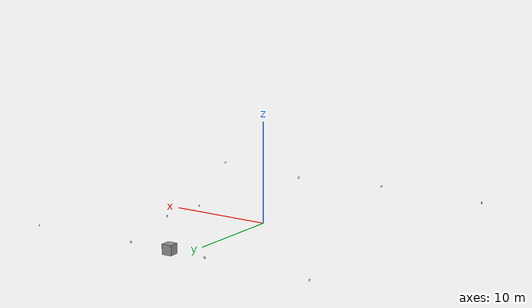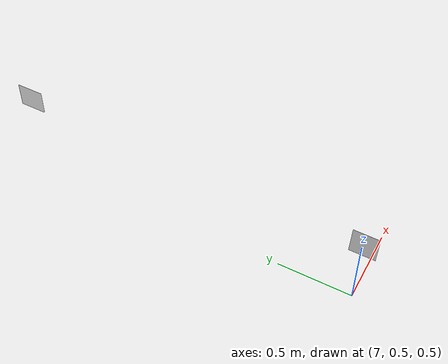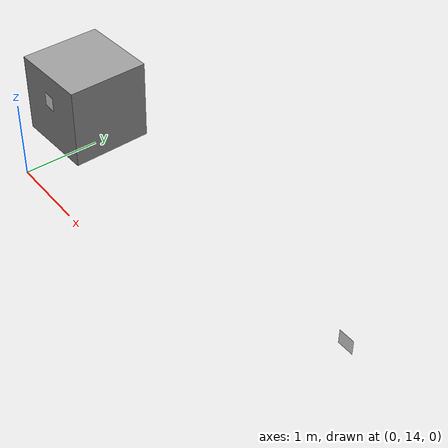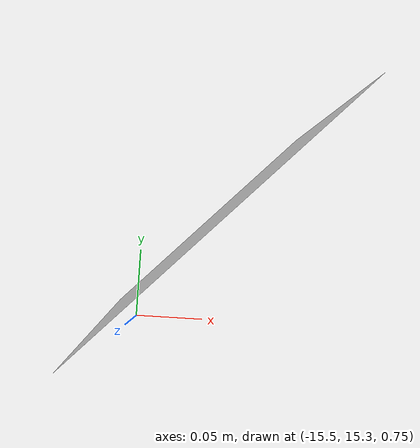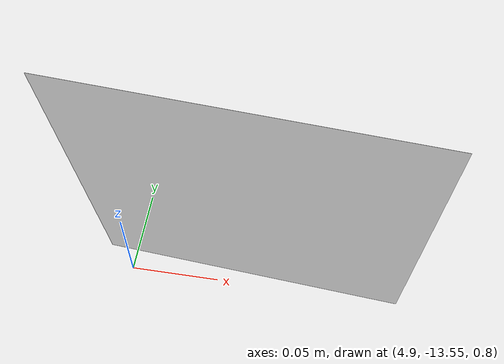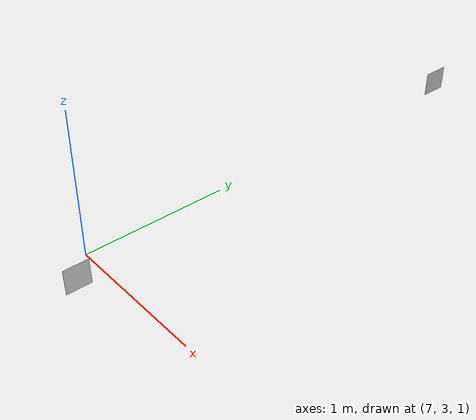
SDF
<sdf version="1.7">
 <world name="default">
  <light name="sun" type="directional">
   <pose>0 0 10 0 -0 0</pose>
   <diffuse>0.8 0.8 0.8 1</diffuse>
   <specular>0.2 0.2 0.2 1</specular>
   <attenuation>
    <range>1000</range>
    <constant>0.9</constant>
    <linear>0.01</linear>
    <quadratic>0.001</quadratic>
   </attenuation>
   <direction>-0.5 0.1 -0.9</direction>
   <spot><inner_angle>0</inner_angle><outer_angle>0</outer_angle><falloff>0</falloff></spot>
  </light>
  <gravity>0 0 -9.8</gravity>
  <magnetic_field>6e-06 2.3e-05 -4.2e-05</magnetic_field>
  <atmosphere type="adiabatic"/>
  <physics type="ode">
   <max_step_size>0.001</max_step_size>
   <real_time_factor>1</real_time_factor>
   <real_time_update_rate>1000</real_time_update_rate>
  </physics>
  <scene>
   <ambient>0.4 0.4 0.4 1</ambient>
   <background>0.7 0.7 0.7 1</background>
   <shadows>1</shadows>
   <sky><clouds><speed>12</speed></clouds></sky>
  </scene>
  <spherical_coordinates>
   <surface_model>EARTH_WGS84</surface_model>
   <latitude_deg>0</latitude_deg>
   <longitude_deg>0</longitude_deg>
   <elevation>0</elevation>
   <heading_deg>0</heading_deg>
  </spherical_coordinates>
  <model name="aruco_visual_marker_0">
   <link name="marker">
    <visual name="visual">
     <geometry><box><size>0.1778 0.1778 1e-05</size></box></geometry>
     <material>
      <script>
       <uri>model://aruco_visual_marker_0/materials/scripts</uri>
       <uri>model://aruco_visual_marker_0/materials/textures</uri>
       <name>ArucoVisualMarker0/Marker</name>
      </script>
      <ambient>1 1 1 1</ambient>
      <diffuse>1 1 1 1</diffuse>
      <specular>0 0 0 1</specular>
      <emissive>1 1 1 0</emissive>
      <shader type="vertex"><normal_map>__default__</normal_map></shader>
     </material>
    </visual>
    <collision name="collision"><geometry><box><size>0.1778 0.1778 1e-05</size></box></geometry></collision>
   </link>
   <link name="marker_pad">
    <pose relative_to="marker">0 0 -1e-05 0 -0 0</pose>
    <visual name="visual">
     <geometry><box><size>0.1778 0.1778 1e-05</size></box></geometry>
     <material>
      <lighting>1</lighting>
      <script><uri>file://media/materials/scripts/gazebo.material</uri><name>Gazebo/White</name></script>
      <ambient>0.3 0.3 0.3 1</ambient>
      <diffuse>0.7 0.7 0.7 1</diffuse>
      <specular>0.01 0.01 0.01 1</specular>
      <emissive>1 1 1 0</emissive>
      <shader type="vertex"><normal_map>__default__</normal_map></shader>
     </material>
    </visual>
    <collision name="collision"><geometry><box><size>0.1778 0.1778 1e-05</size></box></geometry></collision>
   </link>
   <joint name="marker_JOINT_marker_pad" type="revolute">
    <parent>marker</parent>
    <child>marker_pad</child>
    <axis>
     <xyz>0 0 1</xyz>
     <limit><upper>0</upper><lower>0</lower></limit>
     <dynamics><spring_reference>0</spring_reference><spring_stiffness>0</spring_stiffness></dynamics>
    </axis>
   </joint>
   <static>1</static>
   <pose>0.331265 14.2456 1.1463 -0.506792 -1.55516 2.03845</pose>
  </model>
  <model name="unit_box">
   <pose>0.286434 14.7661 0.987179 0 -0 0.031648</pose>
   <link name="link">
    <inertial>
     <mass>1</mass>
     <inertia>
      <ixx>0.166667</ixx>
      <ixy>0</ixy>
      <ixz>0</ixz>
      <iyy>0.166667</iyy>
      <iyz>0</iyz>
      <izz>0.166667</izz>
     </inertia>
    </inertial>
    <collision name="collision"><geometry><box><size>1 1 1</size></box></geometry></collision>
    <visual name="visual">
     <geometry><box><size>1 1 1</size></box></geometry>
     <material>
      <script><name>Gazebo/Grey</name><uri>file://media/materials/scripts/gazebo.material</uri></script>
     </material>
    </visual>
   </link>
  </model>
  <model name="aruco_visual_marker_1">
   <link name="marker">
    <visual name="visual">
     <geometry><box><size>0.1778 0.1778 1e-05</size></box></geometry>
     <material>
      <script>
       <uri>model://aruco_visual_marker_1/materials/scripts</uri>
       <uri>model://aruco_visual_marker_1/materials/textures</uri>
       <name>ArucoVisualMarker1/Marker</name>
      </script>
      <ambient>1 1 1 1</ambient>
      <diffuse>1 1 1 1</diffuse>
      <specular>0 0 0 1</specular>
      <emissive>1 1 1 0</emissive>
      <shader type="vertex"><normal_map>__default__</normal_map></shader>
     </material>
    </visual>
    <collision name="collision"><geometry><box><size>0.1778 0.1778 1e-05</size></box></geometry></collision>
   </link>
   <link name="marker_pad">
    <pose relative_to="marker">0 0 -1e-05 0 -0 0</pose>
    <visual name="visual">
     <geometry><box><size>0.1778 0.1778 1e-05</size></box></geometry>
     <material>
      <lighting>1</lighting>
      <script><uri>file://media/materials/scripts/gazebo.material</uri><name>Gazebo/White</name></script>
      <ambient>0.3 0.3 0.3 1</ambient>
      <diffuse>0.7 0.7 0.7 1</diffuse>
      <specular>0.01 0.01 0.01 1</specular>
      <emissive>1 1 1 0</emissive>
      <shader type="vertex"><normal_map>__default__</normal_map></shader>
     </material>
    </visual>
    <collision name="collision"><geometry><box><size>0.1778 0.1778 1e-05</size></box></geometry></collision>
   </link>
   <joint name="marker_JOINT_marker_pad" type="revolute">
    <parent>marker</parent>
    <child>marker_pad</child>
    <axis>
     <xyz>0 0 1</xyz>
     <limit><upper>0</upper><lower>0</lower></limit>
     <dynamics><spring_reference>0</spring_reference><spring_stiffness>0</spring_stiffness></dynamics>
    </axis>
   </joint>
   <static>1</static>
   <pose>-15.4458 15.37 0.849258 -2.87394 -1.49307 -1.03924</pose>
  </model>
  <model name="aruco_visual_marker_2">
   <link name="marker">
    <visual name="visual">
     <geometry><box><size>0.1778 0.1778 1e-05</size></box></geometry>
     <material>
      <script>
       <uri>model://aruco_visual_marker_2/materials/scripts</uri>
       <uri>model://aruco_visual_marker_2/materials/textures</uri>
       <name>ArucoVisualMarker2/Marker</name>
      </script>
      <ambient>1 1 1 1</ambient>
      <diffuse>1 1 1 1</diffuse>
      <specular>0 0 0 1</specular>
      <emissive>1 1 1 0</emissive>
      <shader type="vertex"><normal_map>__default__</normal_map></shader>
     </material>
    </visual>
    <collision name="collision"><geometry><box><size>0.1778 0.1778 1e-05</size></box></geometry></collision>
   </link>
   <link name="marker_pad">
    <pose relative_to="marker">0 0 -1e-05 0 -0 0</pose>
    <visual name="visual">
     <geometry><box><size>0.1778 0.1778 1e-05</size></box></geometry>
     <material>
      <lighting>1</lighting>
      <script><uri>file://media/materials/scripts/gazebo.material</uri><name>Gazebo/White</name></script>
      <ambient>0.3 0.3 0.3 1</ambient>
      <diffuse>0.7 0.7 0.7 1</diffuse>
      <specular>0.01 0.01 0.01 1</specular>
      <emissive>1 1 1 0</emissive>
      <shader type="vertex"><normal_map>__default__</normal_map></shader>
     </material>
    </visual>
    <collision name="collision"><geometry><box><size>0.1778 0.1778 1e-05</size></box></geometry></collision>
   </link>
   <joint name="marker_JOINT_marker_pad" type="revolute">
    <parent>marker</parent>
    <child>marker_pad</child>
    <axis>
     <xyz>0 0 1</xyz>
     <limit><upper>0</upper><lower>0</lower></limit>
     <dynamics><spring_reference>0</spring_reference><spring_stiffness>0</spring_stiffness></dynamics>
    </axis>
   </joint>
   <static>1</static>
   <pose>15.268 15.1166 0.907992 -3.03498 -1.53153 -2.36281</pose>
  </model>
  <model name="aruco_visual_marker_3">
   <link name="marker">
    <visual name="visual">
     <geometry><box><size>0.1778 0.1778 1e-05</size></box></geometry>
     <material>
      <script>
       <uri>model://aruco_visual_marker_3/materials/scripts</uri>
       <uri>model://aruco_visual_marker_3/materials/textures</uri>
       <name>ArucoVisualMarker3/Marker</name>
      </script>
      <ambient>1 1 1 1</ambient>
      <diffuse>1 1 1 1</diffuse>
      <specular>0 0 0 1</specular>
      <emissive>1 1 1 0</emissive>
      <shader type="vertex"><normal_map>__default__</normal_map></shader>
     </material>
    </visual>
    <collision name="collision"><geometry><box><size>0.1778 0.1778 1e-05</size></box></geometry></collision>
   </link>
   <link name="marker_pad">
    <pose relative_to="marker">0 0 -1e-05 0 -0 0</pose>
    <visual name="visual">
     <geometry><box><size>0.1778 0.1778 1e-05</size></box></geometry>
     <material>
      <lighting>1</lighting>
      <script><uri>file://media/materials/scripts/gazebo.material</uri><name>Gazebo/White</name></script>
      <ambient>0.3 0.3 0.3 1</ambient>
      <diffuse>0.7 0.7 0.7 1</diffuse>
      <specular>0.01 0.01 0.01 1</specular>
      <emissive>1 1 1 0</emissive>
      <shader type="vertex"><normal_map>__default__</normal_map></shader>
     </material>
    </visual>
    <collision name="collision"><geometry><box><size>0.1778 0.1778 1e-05</size></box></geometry></collision>
   </link>
   <joint name="marker_JOINT_marker_pad" type="revolute">
    <parent>marker</parent>
    <child>marker_pad</child>
    <axis>
     <xyz>0 0 1</xyz>
     <limit><upper>0</upper><lower>0</lower></limit>
     <dynamics><spring_reference>0</spring_reference><spring_stiffness>0</spring_stiffness></dynamics>
    </axis>
   </joint>
   <static>1</static>
   <pose>-15.1463 -15.4521 0.913367 0 -1.51467 -2.25555</pose>
  </model>
  <model name="aruco_visual_marker_4">
   <link name="marker">
    <visual name="visual">
     <geometry><box><size>0.1778 0.1778 1e-05</size></box></geometry>
     <material>
      <script>
       <uri>model://aruco_visual_marker_4/materials/scripts</uri>
       <uri>model://aruco_visual_marker_4/materials/textures</uri>
       <name>ArucoVisualMarker4/Marker</name>
      </script>
      <ambient>1 1 1 1</ambient>
      <diffuse>1 1 1 1</diffuse>
      <specular>0 0 0 1</specular>
      <emissive>1 1 1 0</emissive>
      <shader type="vertex"><normal_map>__default__</normal_map></shader>
     </material>
    </visual>
    <collision name="collision"><geometry><box><size>0.1778 0.1778 1e-05</size></box></geometry></collision>
   </link>
   <link name="marker_pad">
    <pose relative_to="marker">0 0 -1e-05 0 -0 0</pose>
    <visual name="visual">
     <geometry><box><size>0.1778 0.1778 1e-05</size></box></geometry>
     <material>
      <lighting>1</lighting>
      <script><uri>file://media/materials/scripts/gazebo.material</uri><name>Gazebo/White</name></script>
      <ambient>0.3 0.3 0.3 1</ambient>
      <diffuse>0.7 0.7 0.7 1</diffuse>
      <specular>0.01 0.01 0.01 1</specular>
      <emissive>1 1 1 0</emissive>
      <shader type="vertex"><normal_map>__default__</normal_map></shader>
     </material>
    </visual>
    <collision name="collision"><geometry><box><size>0.1778 0.1778 1e-05</size></box></geometry></collision>
   </link>
   <joint name="marker_JOINT_marker_pad" type="revolute">
    <parent>marker</parent>
    <child>marker_pad</child>
    <axis>
     <xyz>0 0 1</xyz>
     <limit><upper>0</upper><lower>0</lower></limit>
     <dynamics><spring_reference>0</spring_reference><spring_stiffness>0</spring_stiffness></dynamics>
    </axis>
   </joint>
   <static>1</static>
   <pose>15.1839 -15.2503 0.60397 0.494653 -1.50286 -1.39669</pose>
  </model>
  <model name="aruco_visual_marker_5">
   <link name="marker">
    <visual name="visual">
     <geometry><box><size>0.1778 0.1778 1e-05</size></box></geometry>
     <material>
      <script>
       <uri>model://aruco_visual_marker_5/materials/scripts</uri>
       <uri>model://aruco_visual_marker_5/materials/textures</uri>
       <name>ArucoVisualMarker5/Marker</name>
      </script>
      <ambient>1 1 1 1</ambient>
      <diffuse>1 1 1 1</diffuse>
      <specular>0 0 0 1</specular>
      <emissive>1 1 1 0</emissive>
      <shader type="vertex"><normal_map>__default__</normal_map></shader>
     </material>
    </visual>
    <collision name="collision"><geometry><box><size>0.1778 0.1778 1e-05</size></box></geometry></collision>
   </link>
   <link name="marker_pad">
    <pose relative_to="marker">0 0 -1e-05 0 -0 0</pose>
    <visual name="visual">
     <geometry><box><size>0.1778 0.1778 1e-05</size></box></geometry>
     <material>
      <lighting>1</lighting>
      <script><uri>file://media/materials/scripts/gazebo.material</uri><name>Gazebo/White</name></script>
      <ambient>0.3 0.3 0.3 1</ambient>
      <diffuse>0.7 0.7 0.7 1</diffuse>
      <specular>0.01 0.01 0.01 1</specular>
      <emissive>1 1 1 0</emissive>
      <shader type="vertex"><normal_map>__default__</normal_map></shader>
     </material>
    </visual>
    <collision name="collision"><geometry><box><size>0.1778 0.1778 1e-05</size></box></geometry></collision>
   </link>
   <joint name="marker_JOINT_marker_pad" type="revolute">
    <parent>marker</parent>
    <child>marker_pad</child>
    <axis>
     <xyz>0 0 1</xyz>
     <limit><upper>0</upper><lower>0</lower></limit>
     <dynamics><spring_reference>0</spring_reference><spring_stiffness>0</spring_stiffness></dynamics>
    </axis>
   </joint>
   <static>1</static>
   <pose>-3.78266 14.9397 0.872835 0 -1.5405 1.5525</pose>
  </model>
  <model name="aruco_visual_marker_6">
   <link name="marker">
    <visual name="visual">
     <geometry><box><size>0.1778 0.1778 1e-05</size></box></geometry>
     <material>
      <script>
       <uri>model://aruco_visual_marker_6/materials/scripts</uri>
       <uri>model://aruco_visual_marker_6/materials/textures</uri>
       <name>ArucoVisualMarker6/Marker</name>
      </script>
      <ambient>1 1 1 1</ambient>
      <diffuse>1 1 1 1</diffuse>
      <specular>0 0 0 1</specular>
      <emissive>1 1 1 0</emissive>
      <shader type="vertex"><normal_map>__default__</normal_map></shader>
     </material>
    </visual>
    <collision name="collision"><geometry><box><size>0.1778 0.1778 1e-05</size></box></geometry></collision>
   </link>
   <link name="marker_pad">
    <pose relative_to="marker">0 0 -1e-05 0 -0 0</pose>
    <visual name="visual">
     <geometry><box><size>0.1778 0.1778 1e-05</size></box></geometry>
     <material>
      <lighting>1</lighting>
      <script><uri>file://media/materials/scripts/gazebo.material</uri><name>Gazebo/White</name></script>
      <ambient>0.3 0.3 0.3 1</ambient>
      <diffuse>0.7 0.7 0.7 1</diffuse>
      <specular>0.01 0.01 0.01 1</specular>
      <emissive>1 1 1 0</emissive>
      <shader type="vertex"><normal_map>__default__</normal_map></shader>
     </material>
    </visual>
    <collision name="collision"><geometry><box><size>0.1778 0.1778 1e-05</size></box></geometry></collision>
   </link>
   <joint name="marker_JOINT_marker_pad" type="revolute">
    <parent>marker</parent>
    <child>marker_pad</child>
    <axis>
     <xyz>0 0 1</xyz>
     <limit><upper>0</upper><lower>0</lower></limit>
     <dynamics><spring_reference>0</spring_reference><spring_stiffness>0</spring_stiffness></dynamics>
    </axis>
   </joint>
   <static>1</static>
   <pose>-4.05835 -14.8438 1.03025 -3.02691 -1.51832 1.48834</pose>
  </model>
  <model name="aruco_visual_marker_7">
   <link name="marker">
    <visual name="visual">
     <geometry><box><size>0.1778 0.1778 1e-05</size></box></geometry>
     <material>
      <script>
       <uri>model://aruco_visual_marker_7/materials/scripts</uri>
       <uri>model://aruco_visual_marker_7/materials/textures</uri>
       <name>ArucoVisualMarker7/Marker</name>
      </script>
      <ambient>1 1 1 1</ambient>
      <diffuse>1 1 1 1</diffuse>
      <specular>0 0 0 1</specular>
      <emissive>1 1 1 0</emissive>
      <shader type="vertex"><normal_map>__default__</normal_map></shader>
     </material>
    </visual>
    <collision name="collision"><geometry><box><size>0.1778 0.1778 1e-05</size></box></geometry></collision>
   </link>
   <link name="marker_pad">
    <pose relative_to="marker">0 0 -1e-05 0 -0 0</pose>
    <visual name="visual">
     <geometry><box><size>0.1778 0.1778 1e-05</size></box></geometry>
     <material>
      <lighting>1</lighting>
      <script><uri>file://media/materials/scripts/gazebo.material</uri><name>Gazebo/White</name></script>
      <ambient>0.3 0.3 0.3 1</ambient>
      <diffuse>0.7 0.7 0.7 1</diffuse>
      <specular>0.01 0.01 0.01 1</specular>
      <emissive>1 1 1 0</emissive>
      <shader type="vertex"><normal_map>__default__</normal_map></shader>
     </material>
    </visual>
    <collision name="collision"><geometry><box><size>0.1778 0.1778 1e-05</size></box></geometry></collision>
   </link>
   <joint name="marker_JOINT_marker_pad" type="revolute">
    <parent>marker</parent>
    <child>marker_pad</child>
    <axis>
     <xyz>0 0 1</xyz>
     <limit><upper>0</upper><lower>0</lower></limit>
     <dynamics><spring_reference>0</spring_reference><spring_stiffness>0</spring_stiffness></dynamics>
    </axis>
   </joint>
   <static>1</static>
   <pose>4.80926 14.6444 0.866176 3.14159 -1.53849 -1.57568</pose>
  </model>
  <model name="aruco_visual_marker_8">
   <link name="marker">
    <visual name="visual">
     <geometry><box><size>0.1778 0.1778 1e-05</size></box></geometry>
     <material>
      <script>
       <uri>model://aruco_visual_marker_8/materials/scripts</uri>
       <uri>model://aruco_visual_marker_8/materials/textures</uri>
       <name>ArucoVisualMarker8/Marker</name>
      </script>
      <ambient>1 1 1 1</ambient>
      <diffuse>1 1 1 1</diffuse>
      <specular>0 0 0 1</specular>
      <emissive>1 1 1 0</emissive>
      <shader type="vertex"><normal_map>__default__</normal_map></shader>
     </material>
    </visual>
    <collision name="collision"><geometry><box><size>0.1778 0.1778 1e-05</size></box></geometry></collision>
   </link>
   <link name="marker_pad">
    <pose relative_to="marker">0 0 -1e-05 0 -0 0</pose>
    <visual name="visual">
     <geometry><box><size>0.1778 0.1778 1e-05</size></box></geometry>
     <material>
      <lighting>1</lighting>
      <script><uri>file://media/materials/scripts/gazebo.material</uri><name>Gazebo/White</name></script>
      <ambient>0.3 0.3 0.3 1</ambient>
      <diffuse>0.7 0.7 0.7 1</diffuse>
      <specular>0.01 0.01 0.01 1</specular>
      <emissive>1 1 1 0</emissive>
      <shader type="vertex"><normal_map>__default__</normal_map></shader>
     </material>
    </visual>
    <collision name="collision"><geometry><box><size>0.1778 0.1778 1e-05</size></box></geometry></collision>
   </link>
   <joint name="marker_JOINT_marker_pad" type="revolute">
    <parent>marker</parent>
    <child>marker_pad</child>
    <axis>
     <xyz>0 0 1</xyz>
     <limit><upper>0</upper><lower>0</lower></limit>
     <dynamics><spring_reference>0</spring_reference><spring_stiffness>0</spring_stiffness></dynamics>
    </axis>
   </joint>
   <static>1</static>
   <pose>4.96577 -13.5445 0.868388 0 -1.43515 -1.64672</pose>
  </model>
  <model name="aruco_visual_marker_9">
   <link name="marker">
    <visual name="visual">
     <geometry><box><size>0.1778 0.1778 1e-05</size></box></geometry>
     <material>
      <script>
       <uri>model://aruco_visual_marker_9/materials/scripts</uri>
       <uri>model://aruco_visual_marker_9/materials/textures</uri>
       <name>ArucoVisualMarker9/Marker</name>
      </script>
      <ambient>1 1 1 1</ambient>
      <diffuse>1 1 1 1</diffuse>
      <specular>0 0 0 1</specular>
      <emissive>1 1 1 0</emissive>
      <shader type="vertex"><normal_map>__default__</normal_map></shader>
     </material>
    </visual>
    <collision name="collision"><geometry><box><size>0.1778 0.1778 1e-05</size></box></geometry></collision>
   </link>
   <link name="marker_pad">
    <pose relative_to="marker">0 0 -1e-05 0 -0 0</pose>
    <visual name="visual">
     <geometry><box><size>0.1778 0.1778 1e-05</size></box></geometry>
     <material>
      <lighting>1</lighting>
      <script><uri>file://media/materials/scripts/gazebo.material</uri><name>Gazebo/White</name></script>
      <ambient>0.3 0.3 0.3 1</ambient>
      <diffuse>0.7 0.7 0.7 1</diffuse>
      <specular>0.01 0.01 0.01 1</specular>
      <emissive>1 1 1 0</emissive>
      <shader type="vertex"><normal_map>__default__</normal_map></shader>
     </material>
    </visual>
    <collision name="collision"><geometry><box><size>0.1778 0.1778 1e-05</size></box></geometry></collision>
   </link>
   <joint name="marker_JOINT_marker_pad" type="revolute">
    <parent>marker</parent>
    <child>marker_pad</child>
    <axis>
     <xyz>0 0 1</xyz>
     <limit><upper>0</upper><lower>0</lower></limit>
     <dynamics><spring_reference>0</spring_reference><spring_stiffness>0</spring_stiffness></dynamics>
    </axis>
   </joint>
   <static>1</static>
   <pose>6.97097 6.05411 1.03341 0 -1.5154 0</pose>
  </model>
  <model name="aruco_visual_marker_10">
   <link name="marker">
    <visual name="visual">
     <geometry><box><size>0.1778 0.1778 1e-05</size></box></geometry>
     <material>
      <script>
       <uri>model://aruco_visual_marker_10/materials/scripts</uri>
       <uri>model://aruco_visual_marker_10/materials/textures</uri>
       <name>ArucoVisualMarker10/Marker</name>
      </script>
      <ambient>1 1 1 1</ambient>
      <diffuse>1 1 1 1</diffuse>
      <specular>0 0 0 1</specular>
      <emissive>1 1 1 0</emissive>
      <shader type="vertex"><normal_map>__default__</normal_map></shader>
     </material>
    </visual>
    <collision name="collision"><geometry><box><size>0.1778 0.1778 1e-05</size></box></geometry></collision>
   </link>
   <link name="marker_pad">
    <pose relative_to="marker">0 0 -1e-05 0 -0 0</pose>
    <visual name="visual">
     <geometry><box><size>0.1778 0.1778 1e-05</size></box></geometry>
     <material>
      <lighting>1</lighting>
      <script><uri>file://media/materials/scripts/gazebo.material</uri><name>Gazebo/White</name></script>
      <ambient>0.3 0.3 0.3 1</ambient>
      <diffuse>0.7 0.7 0.7 1</diffuse>
      <specular>0.01 0.01 0.01 1</specular>
      <emissive>1 1 1 0</emissive>
      <shader type="vertex"><normal_map>__default__</normal_map></shader>
     </material>
    </visual>
    <collision name="collision"><geometry><box><size>0.1778 0.1778 1e-05</size></box></geometry></collision>
   </link>
   <joint name="marker_JOINT_marker_pad" type="revolute">
    <parent>marker</parent>
    <child>marker_pad</child>
    <axis>
     <xyz>0 0 1</xyz>
     <limit><upper>0</upper><lower>0</lower></limit>
     <dynamics><spring_reference>0</spring_reference><spring_stiffness>0</spring_stiffness></dynamics>
    </axis>
   </joint>
   <static>1</static>
   <pose>7.10661 2.87337 0.96871 3.14159 -1.54806 3.14159</pose>
  </model>
  <model name="aruco_visual_marker_11">
   <link name="marker">
    <visual name="visual">
     <geometry><box><size>0.1778 0.1778 1e-05</size></box></geometry>
     <material>
      <script>
       <uri>model://aruco_visual_marker_11/materials/scripts</uri>
       <uri>model://aruco_visual_marker_11/materials/textures</uri>
       <name>ArucoVisualMarker11/Marker</name>
      </script>
      <ambient>1 1 1 1</ambient>
      <diffuse>1 1 1 1</diffuse>
      <specular>0 0 0 1</specular>
      <emissive>1 1 1 0</emissive>
      <shader type="vertex"><normal_map>__default__</normal_map></shader>
     </material>
    </visual>
    <collision name="collision"><geometry><box><size>0.1778 0.1778 1e-05</size></box></geometry></collision>
   </link>
   <link name="marker_pad">
    <pose relative_to="marker">0 0 -1e-05 0 -0 0</pose>
    <visual name="visual">
     <geometry><box><size>0.1778 0.1778 1e-05</size></box></geometry>
     <material>
      <lighting>1</lighting>
      <script><uri>file://media/materials/scripts/gazebo.material</uri><name>Gazebo/White</name></script>
      <ambient>0.3 0.3 0.3 1</ambient>
      <diffuse>0.7 0.7 0.7 1</diffuse>
      <specular>0.01 0.01 0.01 1</specular>
      <emissive>1 1 1 0</emissive>
      <shader type="vertex"><normal_map>__default__</normal_map></shader>
     </material>
    </visual>
    <collision name="collision"><geometry><box><size>0.1778 0.1778 1e-05</size></box></geometry></collision>
   </link>
   <joint name="marker_JOINT_marker_pad" type="revolute">
    <parent>marker</parent>
    <child>marker_pad</child>
    <axis>
     <xyz>0 0 1</xyz>
     <limit><upper>0</upper><lower>0</lower></limit>
     <dynamics><spring_reference>0</spring_reference><spring_stiffness>0</spring_stiffness></dynamics>
    </axis>
   </joint>
   <static>1</static>
   <pose>7.19533 0.534001 0.765375 0 -1.4422 0</pose>
  </model>
 </world>
</sdf>
